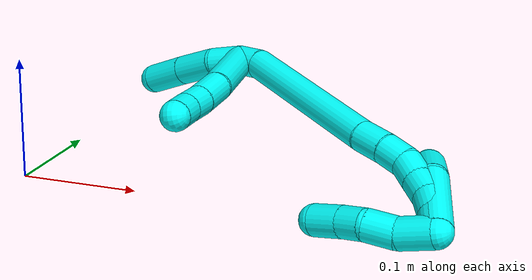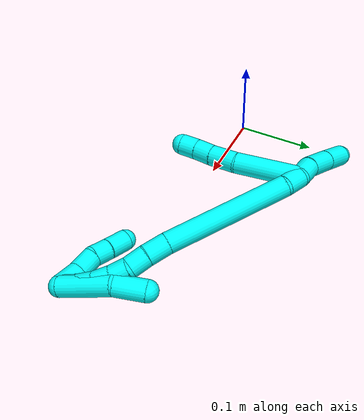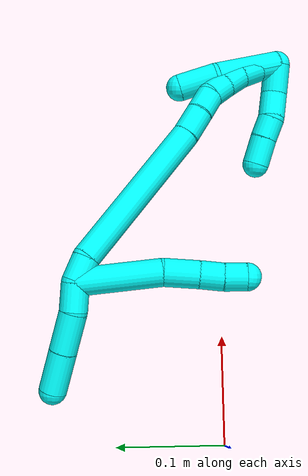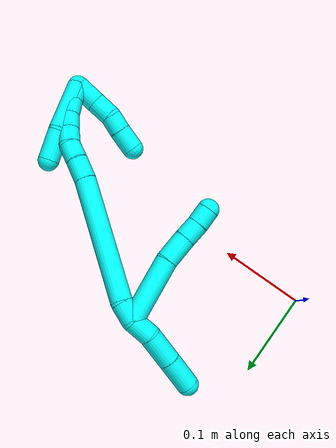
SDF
<sdf version="1.7">
 <world name="default">
  <model name="3">
   <static>0</static>
   <link name="3">
    <collision name="collision-cylinder-e_1_2_8">
     <pose>0.022179 -0.030107 0.007195 1.33622 0.621707 0.496613</pose>
     <geometry><cylinder><radius>0.0125</radius><length>0.07616</length></cylinder></geometry>
     <surface>
      <friction><ode><mu>1.16</mu><mu2>1.16</mu2><slip1>0</slip1><slip2>0</slip2></ode></friction>
      <contact><ode><kp>1e+06</kp><kd>1</kd><max_vel>0</max_vel><min_depth>0.001</min_depth></ode></contact>
     </surface>
    </collision>
    <visual name="visual-cylinder-e_1_2_8">
     <pose>0.022179 -0.030107 0.007195 1.33622 0.621707 0.496613</pose>
     <geometry><cylinder><radius>0.0125</radius><length>0.07616</length></cylinder></geometry>
     <material><ambient>0.003922 1 0.996078 1</ambient></material>
    </visual>
    <collision name="collision-cylinder-e_2_8_9">
     <pose>0.054069 -0.072878 0.014551 1.55804 0.654169 0.646442</pose>
     <geometry><cylinder><radius>0.0125</radius><length>0.031921</length></cylinder></geometry>
     <surface>
      <friction><ode><mu>1.16</mu><mu2>1.16</mu2><slip1>0</slip1><slip2>0</slip2></ode></friction>
      <contact><ode><kp>1e+06</kp><kd>1</kd><max_vel>0</max_vel><min_depth>0.001</min_depth></ode></contact>
     </surface>
    </collision>
    <visual name="visual-cylinder-e_2_8_9">
     <pose>0.054069 -0.072878 0.014551 1.55804 0.654169 0.646442</pose>
     <geometry><cylinder><radius>0.0125</radius><length>0.031921</length></cylinder></geometry>
     <material><ambient>0.003922 1 0.996078 1</ambient></material>
    </visual>
    <collision name="collision-cylinder-e_3_9_10">
     <pose>0.069727 -0.094598 0.014534 1.59061 0.58092 0.591885</pose>
     <geometry><cylinder><radius>0.0125</radius><length>0.021669</length></cylinder></geometry>
     <surface>
      <friction><ode><mu>1.16</mu><mu2>1.16</mu2><slip1>0</slip1><slip2>0</slip2></ode></friction>
      <contact><ode><kp>1e+06</kp><kd>1</kd><max_vel>0</max_vel><min_depth>0.001</min_depth></ode></contact>
     </surface>
    </collision>
    <visual name="visual-cylinder-e_3_9_10">
     <pose>0.069727 -0.094598 0.014534 1.59061 0.58092 0.591885</pose>
     <geometry><cylinder><radius>0.0125</radius><length>0.021669</length></cylinder></geometry>
     <material><ambient>0.003922 1 0.996078 1</ambient></material>
    </visual>
    <collision name="collision-cylinder-e_4_10_6">
     <pose>0.081123 -0.112137 0.015274 1.46278 0.568439 0.512787</pose>
     <geometry><cylinder><radius>0.0125</radius><length>0.02025</length></cylinder></geometry>
     <surface>
      <friction><ode><mu>1.16</mu><mu2>1.16</mu2><slip1>0</slip1><slip2>0</slip2></ode></friction>
      <contact><ode><kp>1e+06</kp><kd>1</kd><max_vel>0</max_vel><min_depth>0.001</min_depth></ode></contact>
     </surface>
    </collision>
    <visual name="visual-cylinder-e_4_10_6">
     <pose>0.081123 -0.112137 0.015274 1.46278 0.568439 0.512787</pose>
     <geometry><cylinder><radius>0.0125</radius><length>0.02025</length></cylinder></geometry>
     <material><ambient>0.003922 1 0.996078 1</ambient></material>
    </visual>
    <collision name="collision-cylinder-e_1_2_11">
     <pose>-0.000386 -0.000362 -0.012911 3.11355 -0.029905 -1.63499</pose>
     <geometry><cylinder><radius>0.0125</radius><length>0.025843</length></cylinder></geometry>
     <surface>
      <friction><ode><mu>1.16</mu><mu2>1.16</mu2><slip1>0</slip1><slip2>0</slip2></ode></friction>
      <contact><ode><kp>1e+06</kp><kd>1</kd><max_vel>0</max_vel><min_depth>0.001</min_depth></ode></contact>
     </surface>
    </collision>
    <visual name="visual-cylinder-e_1_2_11">
     <pose>-0.000386 -0.000362 -0.012911 3.11355 -0.029905 -1.63499</pose>
     <geometry><cylinder><radius>0.0125</radius><length>0.025843</length></cylinder></geometry>
     <material><ambient>0.003922 1 0.996078 1</ambient></material>
    </visual>
    <collision name="collision-cylinder-e_2_11_12">
     <pose>-0.00066 0.003365 -0.043573 -2.91517 0.006198 -0.054497</pose>
     <geometry><cylinder><radius>0.0125</radius><length>0.036435</length></cylinder></geometry>
     <surface>
      <friction><ode><mu>1.16</mu><mu2>1.16</mu2><slip1>0</slip1><slip2>0</slip2></ode></friction>
      <contact><ode><kp>1e+06</kp><kd>1</kd><max_vel>0</max_vel><min_depth>0.001</min_depth></ode></contact>
     </surface>
    </collision>
    <visual name="visual-cylinder-e_2_11_12">
     <pose>-0.00066 0.003365 -0.043573 -2.91517 0.006198 -0.054497</pose>
     <geometry><cylinder><radius>0.0125</radius><length>0.036435</length></cylinder></geometry>
     <material><ambient>0.003922 1 0.996078 1</ambient></material>
    </visual>
    <collision name="collision-cylinder-e_3_12_5">
     <pose>9e-06 0.011965 -0.079631 -2.90004 0.029476 -0.241698</pose>
     <geometry><cylinder><radius>0.0125</radius><length>0.037722</length></cylinder></geometry>
     <surface>
      <friction><ode><mu>1.16</mu><mu2>1.16</mu2><slip1>0</slip1><slip2>0</slip2></ode></friction>
      <contact><ode><kp>1e+06</kp><kd>1</kd><max_vel>0</max_vel><min_depth>0.001</min_depth></ode></contact>
     </surface>
    </collision>
    <visual name="visual-cylinder-e_3_12_5">
     <pose>9e-06 0.011965 -0.079631 -2.90004 0.029476 -0.241698</pose>
     <geometry><cylinder><radius>0.0125</radius><length>0.037722</length></cylinder></geometry>
     <material><ambient>0.003922 1 0.996078 1</ambient></material>
    </visual>
    <collision name="collision-cylinder-e_1_2_13">
     <pose>0.003785 -0.001868 0.010858 0.170386 0.330931 0.02852</pose>
     <geometry><cylinder><radius>0.0125</radius><length>0.023299</length></cylinder></geometry>
     <surface>
      <friction><ode><mu>1.16</mu><mu2>1.16</mu2><slip1>0</slip1><slip2>0</slip2></ode></friction>
      <contact><ode><kp>1e+06</kp><kd>1</kd><max_vel>0</max_vel><min_depth>0.001</min_depth></ode></contact>
     </surface>
    </collision>
    <visual name="visual-cylinder-e_1_2_13">
     <pose>0.003785 -0.001868 0.010858 0.170386 0.330931 0.02852</pose>
     <geometry><cylinder><radius>0.0125</radius><length>0.023299</length></cylinder></geometry>
     <material><ambient>0.003922 1 0.996078 1</ambient></material>
    </visual>
    <collision name="collision-cylinder-e_2_13_14">
     <pose>0.049645 -0.022718 0.079369 0.318059 0.606143 0.100222</pose>
     <geometry><cylinder><radius>0.0125</radius><length>0.147708</length></cylinder></geometry>
     <surface>
      <friction><ode><mu>1.16</mu><mu2>1.16</mu2><slip1>0</slip1><slip2>0</slip2></ode></friction>
      <contact><ode><kp>1e+06</kp><kd>1</kd><max_vel>0</max_vel><min_depth>0.001</min_depth></ode></contact>
     </surface>
    </collision>
    <visual name="visual-cylinder-e_2_13_14">
     <pose>0.049645 -0.022718 0.079369 0.318059 0.606143 0.100222</pose>
     <geometry><cylinder><radius>0.0125</radius><length>0.147708</length></cylinder></geometry>
     <material><ambient>0.003922 1 0.996078 1</ambient></material>
    </visual>
    <collision name="collision-cylinder-e_3_14_15">
     <pose>0.098459 -0.043963 0.14791 0.204999 0.544738 0.057444</pose>
     <geometry><cylinder><radius>0.0125</radius><length>0.026009</length></cylinder></geometry>
     <surface>
      <friction><ode><mu>1.16</mu><mu2>1.16</mu2><slip1>0</slip1><slip2>0</slip2></ode></friction>
      <contact><ode><kp>1e+06</kp><kd>1</kd><max_vel>0</max_vel><min_depth>0.001</min_depth></ode></contact>
     </surface>
    </collision>
    <visual name="visual-cylinder-e_3_14_15">
     <pose>0.098459 -0.043963 0.14791 0.204999 0.544738 0.057444</pose>
     <geometry><cylinder><radius>0.0125</radius><length>0.026009</length></cylinder></geometry>
     <material><ambient>0.003922 1 0.996078 1</ambient></material>
    </visual>
    <collision name="collision-cylinder-e_4_15_16">
     <pose>0.111518 -0.047303 0.167566 0.122116 0.621143 0.039238</pose>
     <geometry><cylinder><radius>0.0125</radius><length>0.021721</length></cylinder></geometry>
     <surface>
      <friction><ode><mu>1.16</mu><mu2>1.16</mu2><slip1>0</slip1><slip2>0</slip2></ode></friction>
      <contact><ode><kp>1e+06</kp><kd>1</kd><max_vel>0</max_vel><min_depth>0.001</min_depth></ode></contact>
     </surface>
    </collision>
    <visual name="visual-cylinder-e_4_15_16">
     <pose>0.111518 -0.047303 0.167566 0.122116 0.621143 0.039238</pose>
     <geometry><cylinder><radius>0.0125</radius><length>0.021721</length></cylinder></geometry>
     <material><ambient>0.003922 1 0.996078 1</ambient></material>
    </visual>
    <collision name="collision-cylinder-e_5_16_17">
     <pose>0.125798 -0.050904 0.182154 0.409263 0.897767 0.199269</pose>
     <geometry><cylinder><radius>0.0125</radius><length>0.020359</length></cylinder></geometry>
     <surface>
      <friction><ode><mu>1.16</mu><mu2>1.16</mu2><slip1>0</slip1><slip2>0</slip2></ode></friction>
      <contact><ode><kp>1e+06</kp><kd>1</kd><max_vel>0</max_vel><min_depth>0.001</min_depth></ode></contact>
     </surface>
    </collision>
    <visual name="visual-cylinder-e_5_16_17">
     <pose>0.125798 -0.050904 0.182154 0.409263 0.897767 0.199269</pose>
     <geometry><cylinder><radius>0.0125</radius><length>0.020359</length></cylinder></geometry>
     <material><ambient>0.003922 1 0.996078 1</ambient></material>
    </visual>
    <collision name="collision-cylinder-e_6_17_18">
     <pose>0.14117 -0.057032 0.193724 0.559889 0.829556 0.251842</pose>
     <geometry><cylinder><radius>0.0125</radius><length>0.020096</length></cylinder></geometry>
     <surface>
      <friction><ode><mu>1.16</mu><mu2>1.16</mu2><slip1>0</slip1><slip2>0</slip2></ode></friction>
      <contact><ode><kp>1e+06</kp><kd>1</kd><max_vel>0</max_vel><min_depth>0.001</min_depth></ode></contact>
     </surface>
    </collision>
    <visual name="visual-cylinder-e_6_17_18">
     <pose>0.14117 -0.057032 0.193724 0.559889 0.829556 0.251842</pose>
     <geometry><cylinder><radius>0.0125</radius><length>0.020096</length></cylinder></geometry>
     <material><ambient>0.003922 1 0.996078 1</ambient></material>
    </visual>
    <collision name="collision-cylinder-e_7_18_19">
     <pose>0.1564 -0.065647 0.203726 0.866961 0.871711 0.424618</pose>
     <geometry><cylinder><radius>0.0125</radius><length>0.020431</length></cylinder></geometry>
     <surface>
      <friction><ode><mu>1.16</mu><mu2>1.16</mu2><slip1>0</slip1><slip2>0</slip2></ode></friction>
      <contact><ode><kp>1e+06</kp><kd>1</kd><max_vel>0</max_vel><min_depth>0.001</min_depth></ode></contact>
     </surface>
    </collision>
    <visual name="visual-cylinder-e_7_18_19">
     <pose>0.1564 -0.065647 0.203726 0.866961 0.871711 0.424618</pose>
     <geometry><cylinder><radius>0.0125</radius><length>0.020431</length></cylinder></geometry>
     <material><ambient>0.003922 1 0.996078 1</ambient></material>
    </visual>
    <collision name="collision-cylinder-e_8_19_1">
     <pose>0.171869 -0.076595 0.211152 1.08006 0.849211 0.529337</pose>
     <geometry><cylinder><radius>0.0125</radius><length>0.020377</length></cylinder></geometry>
     <surface>
      <friction><ode><mu>1.16</mu><mu2>1.16</mu2><slip1>0</slip1><slip2>0</slip2></ode></friction>
      <contact><ode><kp>1e+06</kp><kd>1</kd><max_vel>0</max_vel><min_depth>0.001</min_depth></ode></contact>
     </surface>
    </collision>
    <visual name="visual-cylinder-e_8_19_1">
     <pose>0.171869 -0.076595 0.211152 1.08006 0.849211 0.529337</pose>
     <geometry><cylinder><radius>0.0125</radius><length>0.020377</length></cylinder></geometry>
     <material><ambient>0.003922 1 0.996078 1</ambient></material>
    </visual>
    <collision name="collision-cylinder-e_1_1_20">
     <pose>0.179306 -0.082489 0.200033 -3.13868 -0.014808 2.75312</pose>
     <geometry><cylinder><radius>0.0125</radius><length>0.028586</length></cylinder></geometry>
     <surface>
      <friction><ode><mu>1.16</mu><mu2>1.16</mu2><slip1>0</slip1><slip2>0</slip2></ode></friction>
      <contact><ode><kp>1e+06</kp><kd>1</kd><max_vel>0</max_vel><min_depth>0.001</min_depth></ode></contact>
     </surface>
    </collision>
    <visual name="visual-cylinder-e_1_1_20">
     <pose>0.179306 -0.082489 0.200033 -3.13868 -0.014808 2.75312</pose>
     <geometry><cylinder><radius>0.0125</radius><length>0.028586</length></cylinder></geometry>
     <material><ambient>0.003922 1 0.996078 1</ambient></material>
    </visual>
    <collision name="collision-cylinder-e_2_20_21">
     <pose>0.175627 -0.083993 0.173813 3.01272 -0.280741 -2.28483</pose>
     <geometry><cylinder><radius>0.0125</radius><length>0.025035</length></cylinder></geometry>
     <surface>
      <friction><ode><mu>1.16</mu><mu2>1.16</mu2><slip1>0</slip1><slip2>0</slip2></ode></friction>
      <contact><ode><kp>1e+06</kp><kd>1</kd><max_vel>0</max_vel><min_depth>0.001</min_depth></ode></contact>
     </surface>
    </collision>
    <visual name="visual-cylinder-e_2_20_21">
     <pose>0.175627 -0.083993 0.173813 3.01272 -0.280741 -2.28483</pose>
     <geometry><cylinder><radius>0.0125</radius><length>0.025035</length></cylinder></geometry>
     <material><ambient>0.003922 1 0.996078 1</ambient></material>
    </visual>
    <collision name="collision-cylinder-e_3_21_22">
     <pose>0.170082 -0.083481 0.152082 -2.93463 -0.204417 1.55831</pose>
     <geometry><cylinder><radius>0.0125</radius><length>0.020461</length></cylinder></geometry>
     <surface>
      <friction><ode><mu>1.16</mu><mu2>1.16</mu2><slip1>0</slip1><slip2>0</slip2></ode></friction>
      <contact><ode><kp>1e+06</kp><kd>1</kd><max_vel>0</max_vel><min_depth>0.001</min_depth></ode></contact>
     </surface>
    </collision>
    <visual name="visual-cylinder-e_3_21_22">
     <pose>0.170082 -0.083481 0.152082 -2.93463 -0.204417 1.55831</pose>
     <geometry><cylinder><radius>0.0125</radius><length>0.020461</length></cylinder></geometry>
     <material><ambient>0.003922 1 0.996078 1</ambient></material>
    </visual>
    <collision name="collision-cylinder-e_4_22_4">
     <pose>0.166165 -0.079332 0.129622 -2.97795 -0.142458 1.43206</pose>
     <geometry><cylinder><radius>0.0125</radius><length>0.025917</length></cylinder></geometry>
     <surface>
      <friction><ode><mu>1.16</mu><mu2>1.16</mu2><slip1>0</slip1><slip2>0</slip2></ode></friction>
      <contact><ode><kp>1e+06</kp><kd>1</kd><max_vel>0</max_vel><min_depth>0.001</min_depth></ode></contact>
     </surface>
    </collision>
    <visual name="visual-cylinder-e_4_22_4">
     <pose>0.166165 -0.079332 0.129622 -2.97795 -0.142458 1.43206</pose>
     <geometry><cylinder><radius>0.0125</radius><length>0.025917</length></cylinder></geometry>
     <material><ambient>0.003922 1 0.996078 1</ambient></material>
    </visual>
    <collision name="collision-cylinder-e_1_1_23">
     <pose>0.155397 -0.063992 0.205214 -2.02754 -0.862623 1.27275</pose>
     <geometry><cylinder><radius>0.0125</radius><length>0.063514</length></cylinder></geometry>
     <surface>
      <friction><ode><mu>1.16</mu><mu2>1.16</mu2><slip1>0</slip1><slip2>0</slip2></ode></friction>
      <contact><ode><kp>1e+06</kp><kd>1</kd><max_vel>0</max_vel><min_depth>0.001</min_depth></ode></contact>
     </surface>
    </collision>
    <visual name="visual-cylinder-e_1_1_23">
     <pose>0.155397 -0.063992 0.205214 -2.02754 -0.862623 1.27275</pose>
     <geometry><cylinder><radius>0.0125</radius><length>0.063514</length></cylinder></geometry>
     <material><ambient>0.003922 1 0.996078 1</ambient></material>
    </visual>
    <collision name="collision-cylinder-e_2_23_3">
     <pose>0.121843 -0.031446 0.189203 -2.02855 -0.54341 0.842081</pose>
     <geometry><cylinder><radius>0.0125</radius><length>0.036486</length></cylinder></geometry>
     <surface>
      <friction><ode><mu>1.16</mu><mu2>1.16</mu2><slip1>0</slip1><slip2>0</slip2></ode></friction>
      <contact><ode><kp>1e+06</kp><kd>1</kd><max_vel>0</max_vel><min_depth>0.001</min_depth></ode></contact>
     </surface>
    </collision>
    <visual name="visual-cylinder-e_2_23_3">
     <pose>0.121843 -0.031446 0.189203 -2.02855 -0.54341 0.842081</pose>
     <geometry><cylinder><radius>0.0125</radius><length>0.036486</length></cylinder></geometry>
     <material><ambient>0.003922 1 0.996078 1</ambient></material>
    </visual>
    <collision name="collision-sphere-3">
     <pose>0.11241 -0.017438 0.182302 0 -0 0</pose>
     <geometry><sphere><radius>0.0125</radius></sphere></geometry>
     <surface>
      <friction><ode><mu>1.16</mu><mu2>1.16</mu2><slip1>0</slip1><slip2>0</slip2></ode></friction>
      <contact><ode><kp>1e+06</kp><kd>1</kd><max_vel>0</max_vel><min_depth>0.001</min_depth></ode></contact>
     </surface>
    </collision>
    <visual name="visual-sphere-3">
     <pose>0.11241 -0.017438 0.182302 0 -0 0</pose>
     <geometry><sphere><radius>0.0125</radius></sphere></geometry>
     <material><ambient>0.003922 1 0.996078 1</ambient></material>
    </visual>
    <collision name="collision-sphere-23">
     <pose>0.131276 -0.045453 0.196104 0 -0 0</pose>
     <geometry><sphere><radius>0.0125</radius></sphere></geometry>
     <surface>
      <friction><ode><mu>1.16</mu><mu2>1.16</mu2><slip1>0</slip1><slip2>0</slip2></ode></friction>
      <contact><ode><kp>1e+06</kp><kd>1</kd><max_vel>0</max_vel><min_depth>0.001</min_depth></ode></contact>
     </surface>
    </collision>
    <visual name="visual-sphere-23">
     <pose>0.131276 -0.045453 0.196104 0 -0 0</pose>
     <geometry><sphere><radius>0.0125</radius></sphere></geometry>
     <material><ambient>0.003922 1 0.996078 1</ambient></material>
    </visual>
    <collision name="collision-sphere-4">
     <pose>0.164325 -0.077242 0.116966 0 -0 0</pose>
     <geometry><sphere><radius>0.0125</radius></sphere></geometry>
     <surface>
      <friction><ode><mu>1.16</mu><mu2>1.16</mu2><slip1>0</slip1><slip2>0</slip2></ode></friction>
      <contact><ode><kp>1e+06</kp><kd>1</kd><max_vel>0</max_vel><min_depth>0.001</min_depth></ode></contact>
     </surface>
    </collision>
    <visual name="visual-sphere-4">
     <pose>0.164325 -0.077242 0.116966 0 -0 0</pose>
     <geometry><sphere><radius>0.0125</radius></sphere></geometry>
     <material><ambient>0.003922 1 0.996078 1</ambient></material>
    </visual>
    <collision name="collision-sphere-22">
     <pose>0.168005 -0.081422 0.142278 0 -0 0</pose>
     <geometry><sphere><radius>0.0125</radius></sphere></geometry>
     <surface>
      <friction><ode><mu>1.16</mu><mu2>1.16</mu2><slip1>0</slip1><slip2>0</slip2></ode></friction>
      <contact><ode><kp>1e+06</kp><kd>1</kd><max_vel>0</max_vel><min_depth>0.001</min_depth></ode></contact>
     </surface>
    </collision>
    <visual name="visual-sphere-22">
     <pose>0.168005 -0.081422 0.142278 0 -0 0</pose>
     <geometry><sphere><radius>0.0125</radius></sphere></geometry>
     <material><ambient>0.003922 1 0.996078 1</ambient></material>
    </visual>
    <collision name="collision-sphere-21">
     <pose>0.172158 -0.085539 0.161886 0 -0 0</pose>
     <geometry><sphere><radius>0.0125</radius></sphere></geometry>
     <surface>
      <friction><ode><mu>1.16</mu><mu2>1.16</mu2><slip1>0</slip1><slip2>0</slip2></ode></friction>
      <contact><ode><kp>1e+06</kp><kd>1</kd><max_vel>0</max_vel><min_depth>0.001</min_depth></ode></contact>
     </surface>
    </collision>
    <visual name="visual-sphere-21">
     <pose>0.172158 -0.085539 0.161886 0 -0 0</pose>
     <geometry><sphere><radius>0.0125</radius></sphere></geometry>
     <material><ambient>0.003922 1 0.996078 1</ambient></material>
    </visual>
    <collision name="collision-sphere-20">
     <pose>0.179095 -0.082448 0.185741 0 -0 0</pose>
     <geometry><sphere><radius>0.0125</radius></sphere></geometry>
     <surface>
      <friction><ode><mu>1.16</mu><mu2>1.16</mu2><slip1>0</slip1><slip2>0</slip2></ode></friction>
      <contact><ode><kp>1e+06</kp><kd>1</kd><max_vel>0</max_vel><min_depth>0.001</min_depth></ode></contact>
     </surface>
    </collision>
    <visual name="visual-sphere-20">
     <pose>0.179095 -0.082448 0.185741 0 -0 0</pose>
     <geometry><sphere><radius>0.0125</radius></sphere></geometry>
     <material><ambient>0.003922 1 0.996078 1</ambient></material>
    </visual>
    <collision name="collision-sphere-11">
     <pose>-0.000773 -0.000724 -0.025821 0 -0 0</pose>
     <geometry><sphere><radius>0.0125</radius></sphere></geometry>
     <surface>
      <friction><ode><mu>1.16</mu><mu2>1.16</mu2><slip1>0</slip1><slip2>0</slip2></ode></friction>
      <contact><ode><kp>1e+06</kp><kd>1</kd><max_vel>0</max_vel><min_depth>0.001</min_depth></ode></contact>
     </surface>
    </collision>
    <visual name="visual-sphere-11">
     <pose>-0.000773 -0.000724 -0.025821 0 -0 0</pose>
     <geometry><sphere><radius>0.0125</radius></sphere></geometry>
     <material><ambient>0.003922 1 0.996078 1</ambient></material>
    </visual>
    <collision name="collision-sphere-6">
     <pose>0.086574 -0.12062 0.016194 0 -0 0</pose>
     <geometry><sphere><radius>0.0125</radius></sphere></geometry>
     <surface>
      <friction><ode><mu>1.16</mu><mu2>1.16</mu2><slip1>0</slip1><slip2>0</slip2></ode></friction>
      <contact><ode><kp>1e+06</kp><kd>1</kd><max_vel>0</max_vel><min_depth>0.001</min_depth></ode></contact>
     </surface>
    </collision>
    <visual name="visual-sphere-6">
     <pose>0.086574 -0.12062 0.016194 0 -0 0</pose>
     <geometry><sphere><radius>0.0125</radius></sphere></geometry>
     <material><ambient>0.003922 1 0.996078 1</ambient></material>
    </visual>
    <collision name="collision-sphere-10">
     <pose>0.075673 -0.103653 0.014354 0 -0 0</pose>
     <geometry><sphere><radius>0.0125</radius></sphere></geometry>
     <surface>
      <friction><ode><mu>1.16</mu><mu2>1.16</mu2><slip1>0</slip1><slip2>0</slip2></ode></friction>
      <contact><ode><kp>1e+06</kp><kd>1</kd><max_vel>0</max_vel><min_depth>0.001</min_depth></ode></contact>
     </surface>
    </collision>
    <visual name="visual-sphere-10">
     <pose>0.075673 -0.103653 0.014354 0 -0 0</pose>
     <geometry><sphere><radius>0.0125</radius></sphere></geometry>
     <material><ambient>0.003922 1 0.996078 1</ambient></material>
    </visual>
    <collision name="collision-sphere-9">
     <pose>0.063781 -0.085543 0.014713 0 -0 0</pose>
     <geometry><sphere><radius>0.0125</radius></sphere></geometry>
     <surface>
      <friction><ode><mu>1.16</mu><mu2>1.16</mu2><slip1>0</slip1><slip2>0</slip2></ode></friction>
      <contact><ode><kp>1e+06</kp><kd>1</kd><max_vel>0</max_vel><min_depth>0.001</min_depth></ode></contact>
     </surface>
    </collision>
    <visual name="visual-sphere-9">
     <pose>0.063781 -0.085543 0.014713 0 -0 0</pose>
     <geometry><sphere><radius>0.0125</radius></sphere></geometry>
     <material><ambient>0.003922 1 0.996078 1</ambient></material>
    </visual>
    <collision name="collision-sphere-2">
     <geometry><sphere><radius>0.0125</radius></sphere></geometry>
     <surface>
      <friction><ode><mu>1.16</mu><mu2>1.16</mu2><slip1>0</slip1><slip2>0</slip2></ode></friction>
      <contact><ode><kp>1e+06</kp><kd>1</kd><max_vel>0</max_vel><min_depth>0.001</min_depth></ode></contact>
     </surface>
    </collision>
    <visual name="visual-sphere-2">
     <geometry><sphere><radius>0.0125</radius></sphere></geometry>
     <material><ambient>0.003922 1 0.996078 1</ambient></material>
    </visual>
    <collision name="collision-sphere-19">
     <pose>0.16422 -0.070659 0.207981 0 -0 0</pose>
     <geometry><sphere><radius>0.0125</radius></sphere></geometry>
     <surface>
      <friction><ode><mu>1.16</mu><mu2>1.16</mu2><slip1>0</slip1><slip2>0</slip2></ode></friction>
      <contact><ode><kp>1e+06</kp><kd>1</kd><max_vel>0</max_vel><min_depth>0.001</min_depth></ode></contact>
     </surface>
    </collision>
    <visual name="visual-sphere-19">
     <pose>0.16422 -0.070659 0.207981 0 -0 0</pose>
     <geometry><sphere><radius>0.0125</radius></sphere></geometry>
     <material><ambient>0.003922 1 0.996078 1</ambient></material>
    </visual>
    <collision name="collision-sphere-8">
     <pose>0.044358 -0.060214 0.01439 0 -0 0</pose>
     <geometry><sphere><radius>0.0125</radius></sphere></geometry>
     <surface>
      <friction><ode><mu>1.16</mu><mu2>1.16</mu2><slip1>0</slip1><slip2>0</slip2></ode></friction>
      <contact><ode><kp>1e+06</kp><kd>1</kd><max_vel>0</max_vel><min_depth>0.001</min_depth></ode></contact>
     </surface>
    </collision>
    <visual name="visual-sphere-8">
     <pose>0.044358 -0.060214 0.01439 0 -0 0</pose>
     <geometry><sphere><radius>0.0125</radius></sphere></geometry>
     <material><ambient>0.003922 1 0.996078 1</ambient></material>
    </visual>
    <collision name="collision-sphere-12">
     <pose>-0.000547 0.007455 -0.061326 0 -0 0</pose>
     <geometry><sphere><radius>0.0125</radius></sphere></geometry>
     <surface>
      <friction><ode><mu>1.16</mu><mu2>1.16</mu2><slip1>0</slip1><slip2>0</slip2></ode></friction>
      <contact><ode><kp>1e+06</kp><kd>1</kd><max_vel>0</max_vel><min_depth>0.001</min_depth></ode></contact>
     </surface>
    </collision>
    <visual name="visual-sphere-12">
     <pose>-0.000547 0.007455 -0.061326 0 -0 0</pose>
     <geometry><sphere><radius>0.0125</radius></sphere></geometry>
     <material><ambient>0.003922 1 0.996078 1</ambient></material>
    </visual>
    <collision name="collision-sphere-5">
     <pose>0.000565 0.016474 -0.097937 0 -0 0</pose>
     <geometry><sphere><radius>0.0125</radius></sphere></geometry>
     <surface>
      <friction><ode><mu>1.16</mu><mu2>1.16</mu2><slip1>0</slip1><slip2>0</slip2></ode></friction>
      <contact><ode><kp>1e+06</kp><kd>1</kd><max_vel>0</max_vel><min_depth>0.001</min_depth></ode></contact>
     </surface>
    </collision>
    <visual name="visual-sphere-5">
     <pose>0.000565 0.016474 -0.097937 0 -0 0</pose>
     <geometry><sphere><radius>0.0125</radius></sphere></geometry>
     <material><ambient>0.003922 1 0.996078 1</ambient></material>
    </visual>
    <collision name="collision-sphere-13">
     <pose>0.00757 -0.003736 0.021716 0 -0 0</pose>
     <geometry><sphere><radius>0.0125</radius></sphere></geometry>
     <surface>
      <friction><ode><mu>1.16</mu><mu2>1.16</mu2><slip1>0</slip1><slip2>0</slip2></ode></friction>
      <contact><ode><kp>1e+06</kp><kd>1</kd><max_vel>0</max_vel><min_depth>0.001</min_depth></ode></contact>
     </surface>
    </collision>
    <visual name="visual-sphere-13">
     <pose>0.00757 -0.003736 0.021716 0 -0 0</pose>
     <geometry><sphere><radius>0.0125</radius></sphere></geometry>
     <material><ambient>0.003922 1 0.996078 1</ambient></material>
    </visual>
    <collision name="collision-sphere-14">
     <pose>0.09172 -0.041699 0.137021 0 -0 0</pose>
     <geometry><sphere><radius>0.0125</radius></sphere></geometry>
     <surface>
      <friction><ode><mu>1.16</mu><mu2>1.16</mu2><slip1>0</slip1><slip2>0</slip2></ode></friction>
      <contact><ode><kp>1e+06</kp><kd>1</kd><max_vel>0</max_vel><min_depth>0.001</min_depth></ode></contact>
     </surface>
    </collision>
    <visual name="visual-sphere-14">
     <pose>0.09172 -0.041699 0.137021 0 -0 0</pose>
     <geometry><sphere><radius>0.0125</radius></sphere></geometry>
     <material><ambient>0.003922 1 0.996078 1</ambient></material>
    </visual>
    <collision name="collision-sphere-15">
     <pose>0.105198 -0.046227 0.1588 0 -0 0</pose>
     <geometry><sphere><radius>0.0125</radius></sphere></geometry>
     <surface>
      <friction><ode><mu>1.16</mu><mu2>1.16</mu2><slip1>0</slip1><slip2>0</slip2></ode></friction>
      <contact><ode><kp>1e+06</kp><kd>1</kd><max_vel>0</max_vel><min_depth>0.001</min_depth></ode></contact>
     </surface>
    </collision>
    <visual name="visual-sphere-15">
     <pose>0.105198 -0.046227 0.1588 0 -0 0</pose>
     <geometry><sphere><radius>0.0125</radius></sphere></geometry>
     <material><ambient>0.003922 1 0.996078 1</ambient></material>
    </visual>
    <collision name="collision-sphere-16">
     <pose>0.117839 -0.048379 0.176332 0 -0 0</pose>
     <geometry><sphere><radius>0.0125</radius></sphere></geometry>
     <surface>
      <friction><ode><mu>1.16</mu><mu2>1.16</mu2><slip1>0</slip1><slip2>0</slip2></ode></friction>
      <contact><ode><kp>1e+06</kp><kd>1</kd><max_vel>0</max_vel><min_depth>0.001</min_depth></ode></contact>
     </surface>
    </collision>
    <visual name="visual-sphere-16">
     <pose>0.117839 -0.048379 0.176332 0 -0 0</pose>
     <geometry><sphere><radius>0.0125</radius></sphere></geometry>
     <material><ambient>0.003922 1 0.996078 1</ambient></material>
    </visual>
    <collision name="collision-sphere-17">
     <pose>0.133758 -0.053429 0.187975 0 -0 0</pose>
     <geometry><sphere><radius>0.0125</radius></sphere></geometry>
     <surface>
      <friction><ode><mu>1.16</mu><mu2>1.16</mu2><slip1>0</slip1><slip2>0</slip2></ode></friction>
      <contact><ode><kp>1e+06</kp><kd>1</kd><max_vel>0</max_vel><min_depth>0.001</min_depth></ode></contact>
     </surface>
    </collision>
    <visual name="visual-sphere-17">
     <pose>0.133758 -0.053429 0.187975 0 -0 0</pose>
     <geometry><sphere><radius>0.0125</radius></sphere></geometry>
     <material><ambient>0.003922 1 0.996078 1</ambient></material>
    </visual>
    <collision name="collision-sphere-18">
     <pose>0.148581 -0.060635 0.199472 0 -0 0</pose>
     <geometry><sphere><radius>0.0125</radius></sphere></geometry>
     <surface>
      <friction><ode><mu>1.16</mu><mu2>1.16</mu2><slip1>0</slip1><slip2>0</slip2></ode></friction>
      <contact><ode><kp>1e+06</kp><kd>1</kd><max_vel>0</max_vel><min_depth>0.001</min_depth></ode></contact>
     </surface>
    </collision>
    <visual name="visual-sphere-18">
     <pose>0.148581 -0.060635 0.199472 0 -0 0</pose>
     <geometry><sphere><radius>0.0125</radius></sphere></geometry>
     <material><ambient>0.003922 1 0.996078 1</ambient></material>
    </visual>
    <collision name="collision-sphere-1">
     <pose>0.179518 -0.082531 0.214324 0 -0 0</pose>
     <geometry><sphere><radius>0.0125</radius></sphere></geometry>
     <surface>
      <friction><ode><mu>1.16</mu><mu2>1.16</mu2><slip1>0</slip1><slip2>0</slip2></ode></friction>
      <contact><ode><kp>1e+06</kp><kd>1</kd><max_vel>0</max_vel><min_depth>0.001</min_depth></ode></contact>
     </surface>
    </collision>
    <visual name="visual-sphere-1">
     <pose>0.179518 -0.082531 0.214324 0 -0 0</pose>
     <geometry><sphere><radius>0.0125</radius></sphere></geometry>
     <material><ambient>0.003922 1 0.996078 1</ambient></material>
    </visual>
    <inertial>
     <pose>0.083546 -0.043289 0.091626 0 -0 0</pose>
     <mass>0.75</mass>
     <inertia>
      <ixx>0.000356</ixx>
      <ixy>0</ixy>
      <ixz>0</ixz>
      <iyy>0.000354</iyy>
      <iyz>0</iyz>
      <izz>-7.9e-05</izz>
     </inertia>
    </inertial>
   </link>
   <pose>0.142479 0.129464 0.080409 -1.14156 0.968697 -1.31221</pose>
  </model>
 </world>
</sdf>
